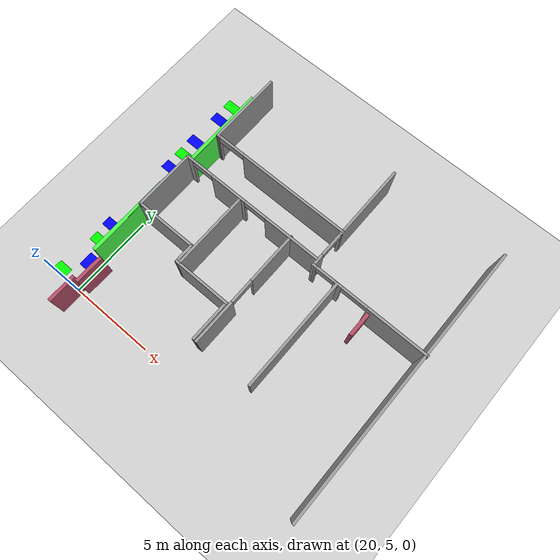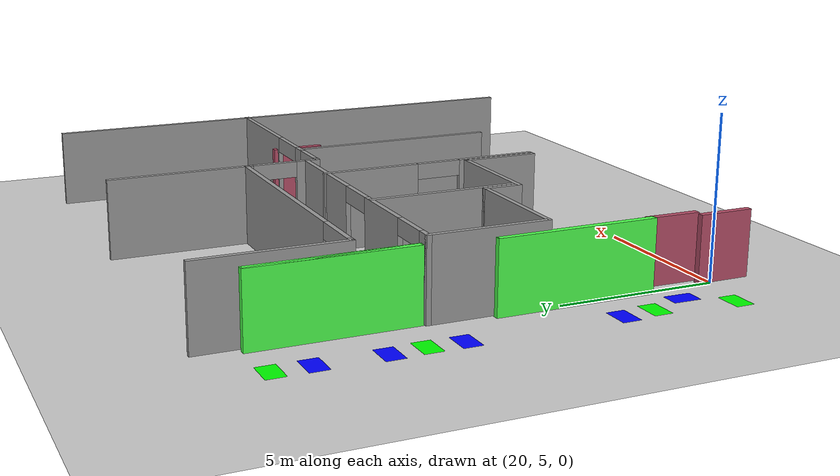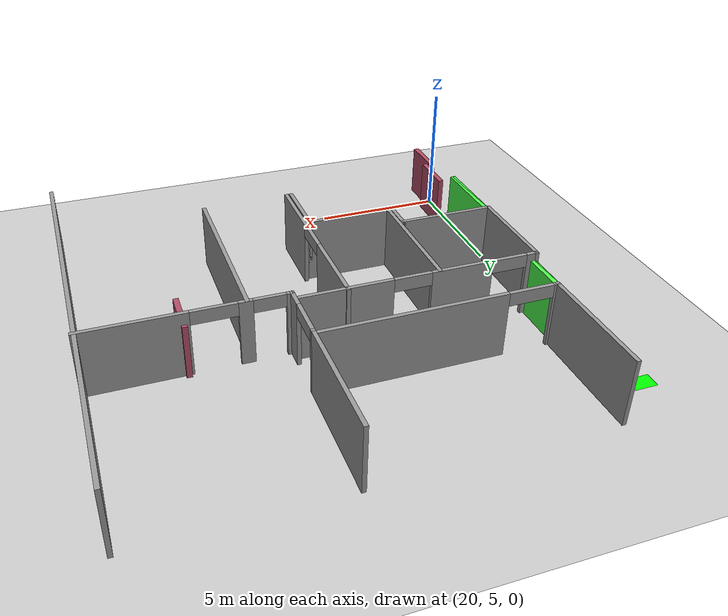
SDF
<sdf version="1.6">
 <world name="default">
  <model name="ground_plane">
   <pose>0 0 0.001 0 -0 0</pose>
   <static>1</static>
   <link name="link">
    <collision name="collision">
     <geometry><plane><normal>0 0 1</normal><size>100 100</size></plane></geometry>
     <surface><friction><ode><mu>100</mu><mu2>50</mu2></ode></friction></surface>
    </collision>
    <visual name="visual">
     <cast_shadows>0</cast_shadows>
     <geometry><plane><normal>0 0 1</normal><size>100 100</size></plane></geometry>
     <material>
      <script><uri>file://media/materials/scripts/gazebo.material</uri><name>Gazebo/Grey</name></script>
     </material>
    </visual>
   </link>
  </model>
  <model name="doorOutside_clone_8_clone">
   <link name="link">
    <pose>0.155539 -0.366282 0.216958 0 -0 0</pose>
    <inertial>
     <mass>2.13199</mass>
     <inertia>
      <ixx>0.452656</ixx>
      <ixy>0</ixy>
      <ixz>0</ixz>
      <iyy>0.796738</iyy>
      <iyz>0</iyz>
      <izz>0.699414</izz>
     </inertia>
     <pose>0 0 0.001 0 -0 0</pose>
    </inertial>
    <visual name="visual">
     <geometry><box><size>1.71368 0.198843 2.05986</size></box></geometry>
     <material>
      <script><name>Gazebo/Grey</name><uri>file://media/materials/scripts/gazebo.material</uri></script>
      <ambient>0.7 0.3 0.4 1</ambient>
      <diffuse>0.7 0.7 0.7 1</diffuse>
      <specular>0.01 0.01 0.01 1</specular>
      <emissive>0 0 0 1</emissive>
      <shader type="vertex"><normal_map>__default__</normal_map></shader>
      <lighting>0</lighting>
     </material>
     <pose>0 0 0.001 0 -0 0</pose>
    </visual>
    <collision name="collision">
     <pose>0 0 0.001 0 -0 0</pose>
     <geometry><box><size>1.71368 0.198843 2.05986</size></box></geometry>
     <surface>
      <friction>
       <ode><mu>1</mu><mu2>1</mu2><fdir1>0 0 0</fdir1><slip1>0</slip1><slip2>0</slip2></ode>
       <torsional>
        <coefficient>1</coefficient>
        <patch_radius>0</patch_radius>
        <surface_radius>0</surface_radius>
        <use_patch_radius>1</use_patch_radius>
        <ode><slip>0</slip></ode>
       </torsional>
      </friction>
      <bounce><restitution_coefficient>0</restitution_coefficient><threshold>1e+06</threshold></bounce>
      <contact>
       <collide_without_contact>0</collide_without_contact>
       <collide_without_contact_bitmask>1</collide_without_contact_bitmask>
       <collide_bitmask>1</collide_bitmask>
       <ode>
        <soft_cfm>0</soft_cfm>
        <soft_erp>0.2</soft_erp>
        <kp>1e+13</kp>
        <kd>1</kd>
        <max_vel>0.01</max_vel>
        <min_depth>0</min_depth>
       </ode>
       <bullet>
        <split_impulse>1</split_impulse>
        <split_impulse_penetration_threshold>-0.01</split_impulse_penetration_threshold>
        <soft_cfm>0</soft_cfm>
        <soft_erp>0.2</soft_erp>
        <kp>1e+13</kp>
        <kd>1</kd>
       </bullet>
      </contact>
     </surface>
    </collision>
   </link>
   <static>1</static>
   <pose>20.1185 5.95904 0.812973 1e-06 1e-06 1.55384</pose>
  </model>
  <model name="doorOutside_clone_8_clone_0">
   <link name="link">
    <pose>0.155539 -0.366282 0.216958 0 -0 0</pose>
    <inertial>
     <mass>2.13199</mass>
     <inertia>
      <ixx>0.452656</ixx>
      <ixy>0</ixy>
      <ixz>0</ixz>
      <iyy>0.796738</iyy>
      <iyz>0</iyz>
      <izz>0.699414</izz>
     </inertia>
     <pose>0 0 0.001 0 -0 0</pose>
    </inertial>
    <visual name="visual">
     <geometry><box><size>1.71368 0.198843 2.05986</size></box></geometry>
     <material>
      <script><name>Gazebo/Grey</name><uri>file://media/materials/scripts/gazebo.material</uri></script>
      <ambient>0.7 0.3 0.4 1</ambient>
      <diffuse>0.7 0.7 0.7 1</diffuse>
      <specular>0.01 0.01 0.01 1</specular>
      <emissive>0 0 0 1</emissive>
      <shader type="vertex"><normal_map>__default__</normal_map></shader>
      <lighting>0</lighting>
     </material>
     <pose>0 0 0.001 0 -0 0</pose>
    </visual>
    <collision name="collision">
     <pose>0 0 0.001 0 -0 0</pose>
     <geometry><box><size>1.71368 0.198843 2.05986</size></box></geometry>
     <surface>
      <friction>
       <ode><mu>1</mu><mu2>1</mu2><fdir1>0 0 0</fdir1><slip1>0</slip1><slip2>0</slip2></ode>
       <torsional>
        <coefficient>1</coefficient>
        <patch_radius>0</patch_radius>
        <surface_radius>0</surface_radius>
        <use_patch_radius>1</use_patch_radius>
        <ode><slip>0</slip></ode>
       </torsional>
      </friction>
      <bounce><restitution_coefficient>0</restitution_coefficient><threshold>1e+06</threshold></bounce>
      <contact>
       <collide_without_contact>0</collide_without_contact>
       <collide_without_contact_bitmask>1</collide_without_contact_bitmask>
       <collide_bitmask>1</collide_bitmask>
       <ode>
        <soft_cfm>0</soft_cfm>
        <soft_erp>0.2</soft_erp>
        <kp>1e+13</kp>
        <kd>1</kd>
        <max_vel>0.01</max_vel>
        <min_depth>0</min_depth>
       </ode>
       <bullet>
        <split_impulse>1</split_impulse>
        <split_impulse_penetration_threshold>-0.01</split_impulse_penetration_threshold>
        <soft_cfm>0</soft_cfm>
        <soft_erp>0.2</soft_erp>
        <kp>1e+13</kp>
        <kd>1</kd>
       </bullet>
      </contact>
     </surface>
    </collision>
   </link>
   <static>1</static>
   <pose>32.3755 12.8211 0.812972 -1e-06 0 1.56458</pose>
  </model>
  <model name="doorOutside_clone_8_clone_1">
   <link name="link">
    <pose>0.155539 -0.366282 0.216958 0 -0 0</pose>
    <inertial>
     <mass>2.13199</mass>
     <inertia>
      <ixx>0.452656</ixx>
      <ixy>0</ixy>
      <ixz>0</ixz>
      <iyy>0.796738</iyy>
      <iyz>0</iyz>
      <izz>0.699414</izz>
     </inertia>
     <pose>0 0 0.001 0 -0 0</pose>
    </inertial>
    <visual name="visual">
     <geometry><box><size>1.71368 0.198843 2.05986</size></box></geometry>
     <material>
      <script><name>Gazebo/Grey</name><uri>file://media/materials/scripts/gazebo.material</uri></script>
      <ambient>0.7 0.3 0.4 1</ambient>
      <diffuse>0.7 0.7 0.7 1</diffuse>
      <specular>0.01 0.01 0.01 1</specular>
      <emissive>0 0 0 1</emissive>
      <shader type="vertex"><normal_map>__default__</normal_map></shader>
      <lighting>0</lighting>
     </material>
     <pose>0 0 0.001 0 -0 0</pose>
    </visual>
    <collision name="collision">
     <pose>0 0 0.001 0 -0 0</pose>
     <geometry><box><size>1.71368 0.198843 2.05986</size></box></geometry>
     <surface>
      <friction>
       <ode><mu>1</mu><mu2>1</mu2><fdir1>0 0 0</fdir1><slip1>0</slip1><slip2>0</slip2></ode>
       <torsional>
        <coefficient>1</coefficient>
        <patch_radius>0</patch_radius>
        <surface_radius>0</surface_radius>
        <use_patch_radius>1</use_patch_radius>
        <ode><slip>0</slip></ode>
       </torsional>
      </friction>
      <bounce><restitution_coefficient>0</restitution_coefficient><threshold>1e+06</threshold></bounce>
      <contact>
       <collide_without_contact>0</collide_without_contact>
       <collide_without_contact_bitmask>1</collide_without_contact_bitmask>
       <collide_bitmask>1</collide_bitmask>
       <ode>
        <soft_cfm>0</soft_cfm>
        <soft_erp>0.2</soft_erp>
        <kp>1e+13</kp>
        <kd>1</kd>
        <max_vel>0.01</max_vel>
        <min_depth>0</min_depth>
       </ode>
       <bullet>
        <split_impulse>1</split_impulse>
        <split_impulse_penetration_threshold>-0.01</split_impulse_penetration_threshold>
        <soft_cfm>0</soft_cfm>
        <soft_erp>0.2</soft_erp>
        <kp>1e+13</kp>
        <kd>1</kd>
       </bullet>
      </contact>
     </surface>
    </collision>
   </link>
   <static>1</static>
   <pose>19.8025 4.35425 0.812972 0 -0 1.57076</pose>
  </model>
  <model name="wall_static_1_clone">
   <link name="link">
    <inertial>
     <mass>1</mass>
     <inertia>
      <ixx>0.166667</ixx>
      <ixy>0</ixy>
      <ixz>0</ixz>
      <iyy>0.166667</iyy>
      <iyz>0</iyz>
      <izz>0.166667</izz>
     </inertia>
     <pose>0 0 0.001 0 -0 0</pose>
    </inertial>
    <visual name="ModelPreview_1::link::visual_1">
     <geometry><box><size>4.92373 0.195361 2.3796</size></box></geometry>
     <material>
      <script><name>Gazebo/Grey</name><uri>file://media/materials/scripts/gazebo.material</uri></script>
      <ambient>0.3 1 0.3 1</ambient>
      <diffuse>0.7 0.7 0.7 1</diffuse>
      <specular>0.01 0.01 0.01 1</specular>
      <emissive>0 0 0 1</emissive>
      <shader type="vertex"><normal_map>__default__</normal_map></shader>
     </material>
     <pose>0 0 0.001 0 -0 0</pose>
    </visual>
    <visual name="visual">
     <geometry><box><size>5 0.2 2.3796</size></box></geometry>
     <material>
      <script><name>Gazebo/Grey</name><uri>file://media/materials/scripts/gazebo.material</uri></script>
      <ambient>0.3 1 0.3 1</ambient>
      <diffuse>0.7 0.7 0.7 1</diffuse>
      <specular>0.01 0.01 0.01 1</specular>
      <emissive>0 0 0 1</emissive>
      <shader type="vertex"><normal_map>__default__</normal_map></shader>
     </material>
     <pose>0 0 0.001 0 -0 0</pose>
    </visual>
    <collision name="collision">
     <pose>0 0 0.001 0 -0 0</pose>
     <geometry><box><size>4.92373 0.195361 2.3796</size></box></geometry>
     <surface>
      <friction>
       <ode><mu>1</mu><mu2>1</mu2><fdir1>0 0 0</fdir1><slip1>0</slip1><slip2>0</slip2></ode>
       <torsional>
        <coefficient>1</coefficient>
        <patch_radius>0</patch_radius>
        <surface_radius>0</surface_radius>
        <use_patch_radius>1</use_patch_radius>
        <ode><slip>0</slip></ode>
       </torsional>
      </friction>
      <bounce><restitution_coefficient>0</restitution_coefficient><threshold>1e+06</threshold></bounce>
      <contact>
       <collide_without_contact>0</collide_without_contact>
       <collide_without_contact_bitmask>1</collide_without_contact_bitmask>
       <collide_bitmask>1</collide_bitmask>
       <ode>
        <soft_cfm>0</soft_cfm>
        <soft_erp>0.2</soft_erp>
        <kp>1e+13</kp>
        <kd>1</kd>
        <max_vel>0.01</max_vel>
        <min_depth>0</min_depth>
       </ode>
       <bullet>
        <split_impulse>1</split_impulse>
        <split_impulse_penetration_threshold>-0.01</split_impulse_penetration_threshold>
        <soft_cfm>0</soft_cfm>
        <soft_erp>0.2</soft_erp>
        <kp>1e+13</kp>
        <kd>1</kd>
       </bullet>
      </contact>
     </surface>
    </collision>
   </link>
   <static>1</static>
   <pose>19.9958 9.52677 1.02486 0 -0 1.57305</pose>
  </model>
  <model name="wall_static_1_clone_0">
   <link name="link">
    <inertial>
     <mass>1</mass>
     <inertia>
      <ixx>0.166667</ixx>
      <ixy>0</ixy>
      <ixz>0</ixz>
      <iyy>0.166667</iyy>
      <iyz>0</iyz>
      <izz>0.166667</izz>
     </inertia>
     <pose>0 0 0.001 0 -0 0</pose>
    </inertial>
    <visual name="ModelPreview_1::link::visual_1">
     <geometry><box><size>4.92373 0.195361 2.3796</size></box></geometry>
     <material>
      <script><name>Gazebo/Grey</name><uri>file://media/materials/scripts/gazebo.material</uri></script>
      <ambient>0.3 1 0.3 1</ambient>
      <diffuse>0.7 0.7 0.7 1</diffuse>
      <specular>0.01 0.01 0.01 1</specular>
      <emissive>0 0 0 1</emissive>
      <shader type="vertex"><normal_map>__default__</normal_map></shader>
     </material>
     <pose>0 0 0.001 0 -0 0</pose>
    </visual>
    <visual name="visual">
     <geometry><box><size>5 0.2 2.3796</size></box></geometry>
     <material>
      <script><name>Gazebo/Grey</name><uri>file://media/materials/scripts/gazebo.material</uri></script>
      <ambient>0.3 1 0.3 1</ambient>
      <diffuse>0.7 0.7 0.7 1</diffuse>
      <specular>0.01 0.01 0.01 1</specular>
      <emissive>0 0 0 1</emissive>
      <shader type="vertex"><normal_map>__default__</normal_map></shader>
     </material>
     <pose>0 0 0.001 0 -0 0</pose>
    </visual>
    <collision name="collision">
     <pose>0 0 0.001 0 -0 0</pose>
     <geometry><box><size>4.92373 0.195361 2.3796</size></box></geometry>
     <surface>
      <friction>
       <ode><mu>1</mu><mu2>1</mu2><fdir1>0 0 0</fdir1><slip1>0</slip1><slip2>0</slip2></ode>
       <torsional>
        <coefficient>1</coefficient>
        <patch_radius>0</patch_radius>
        <surface_radius>0</surface_radius>
        <use_patch_radius>1</use_patch_radius>
        <ode><slip>0</slip></ode>
       </torsional>
      </friction>
      <bounce><restitution_coefficient>0</restitution_coefficient><threshold>1e+06</threshold></bounce>
      <contact>
       <collide_without_contact>0</collide_without_contact>
       <collide_without_contact_bitmask>1</collide_without_contact_bitmask>
       <collide_bitmask>1</collide_bitmask>
       <ode>
        <soft_cfm>0</soft_cfm>
        <soft_erp>0.2</soft_erp>
        <kp>1e+13</kp>
        <kd>1</kd>
        <max_vel>0.01</max_vel>
        <min_depth>0</min_depth>
       </ode>
       <bullet>
        <split_impulse>1</split_impulse>
        <split_impulse_penetration_threshold>-0.01</split_impulse_penetration_threshold>
        <soft_cfm>0</soft_cfm>
        <soft_erp>0.2</soft_erp>
        <kp>1e+13</kp>
        <kd>1</kd>
       </bullet>
      </contact>
     </surface>
    </collision>
   </link>
   <static>1</static>
   <pose>20.2741 16.5722 1.02486 0 -0 1.57305</pose>
  </model>
  <model name="corridor_3">
   <link name="link">
    <pose>0 0 0.001 0 -0 0</pose>
    <inertial>
     <mass>0.0352517</mass>
     <inertia>
      <ixx>0.00099707</ixx>
      <ixy>0</ixy>
      <ixz>0</ixz>
      <iyy>0.00220147</iyy>
      <iyz>0</iyz>
      <izz>0.0031692</izz>
     </inertia>
     <pose>0 0 0.001 0 -0 0</pose>
    </inertial>
    <visual name="visual">
     <geometry><box><size>0.862743 0.578289 1e-06</size></box></geometry>
     <material>
      <script><name>Gazebo/Grey</name><uri>file://media/materials/scripts/gazebo.material</uri></script>
      <ambient>0 1 0 1</ambient>
      <diffuse>0 1 0 1</diffuse>
      <specular>0 1 0 1</specular>
      <emissive>0 1 0 1</emissive>
      <shader type="vertex"><normal_map>__default__</normal_map></shader>
     </material>
     <pose>0 0 0.001 0 -0 0</pose>
    </visual>
    <collision name="collision">
     <pose>0 0 0.001 0 -0 0</pose>
     <geometry><box><size>0.862743 0.578289 0.000477</size></box></geometry>
     <surface>
      <friction>
       <ode><mu>1</mu><mu2>1</mu2><fdir1>0 0 0</fdir1><slip1>0</slip1><slip2>0</slip2></ode>
       <torsional>
        <coefficient>1</coefficient>
        <patch_radius>0</patch_radius>
        <surface_radius>0</surface_radius>
        <use_patch_radius>1</use_patch_radius>
        <ode><slip>0</slip></ode>
       </torsional>
      </friction>
      <bounce><restitution_coefficient>0</restitution_coefficient><threshold>1e+06</threshold></bounce>
      <contact>
       <collide_without_contact>0</collide_without_contact>
       <collide_without_contact_bitmask>1</collide_without_contact_bitmask>
       <collide_bitmask>1</collide_bitmask>
       <ode>
        <soft_cfm>0</soft_cfm>
        <soft_erp>0.2</soft_erp>
        <kp>1e+13</kp>
        <kd>1</kd>
        <max_vel>0.01</max_vel>
        <min_depth>0</min_depth>
       </ode>
       <bullet>
        <split_impulse>1</split_impulse>
        <split_impulse_penetration_threshold>-0.01</split_impulse_penetration_threshold>
        <soft_cfm>0</soft_cfm>
        <soft_erp>0.2</soft_erp>
        <kp>1e+13</kp>
        <kd>1</kd>
       </bullet>
      </contact>
     </surface>
    </collision>
   </link>
   <static>1</static>
   <pose>18.6903 14.6665 0 0 -0 0</pose>
  </model>
  <model name="corridor_4">
   <link name="link">
    <pose>0 0 0.001 0 -0 0</pose>
    <inertial>
     <mass>0.0352517</mass>
     <inertia>
      <ixx>0.00099707</ixx>
      <ixy>0</ixy>
      <ixz>0</ixz>
      <iyy>0.00220147</iyy>
      <iyz>0</iyz>
      <izz>0.0031692</izz>
     </inertia>
     <pose>0 0 0.001 0 -0 0</pose>
    </inertial>
    <visual name="visual">
     <geometry><box><size>0.862743 0.578289 1e-06</size></box></geometry>
     <material>
      <script><name>Gazebo/Grey</name><uri>file://media/materials/scripts/gazebo.material</uri></script>
      <ambient>0 1 0 1</ambient>
      <diffuse>0 1 0 1</diffuse>
      <specular>0 1 0 1</specular>
      <emissive>0 1 0 1</emissive>
      <shader type="vertex"><normal_map>__default__</normal_map></shader>
     </material>
     <pose>0 0 0.001 0 -0 0</pose>
    </visual>
    <collision name="collision">
     <pose>0 0 0.001 0 -0 0</pose>
     <geometry><box><size>0.862743 0.578289 0.000477</size></box></geometry>
     <surface>
      <friction>
       <ode><mu>1</mu><mu2>1</mu2><fdir1>0 0 0</fdir1><slip1>0</slip1><slip2>0</slip2></ode>
       <torsional>
        <coefficient>1</coefficient>
        <patch_radius>0</patch_radius>
        <surface_radius>0</surface_radius>
        <use_patch_radius>1</use_patch_radius>
        <ode><slip>0</slip></ode>
       </torsional>
      </friction>
      <bounce><restitution_coefficient>0</restitution_coefficient><threshold>1e+06</threshold></bounce>
      <contact>
       <collide_without_contact>0</collide_without_contact>
       <collide_without_contact_bitmask>1</collide_without_contact_bitmask>
       <collide_bitmask>1</collide_bitmask>
       <ode>
        <soft_cfm>0</soft_cfm>
        <soft_erp>0.2</soft_erp>
        <kp>1e+13</kp>
        <kd>1</kd>
        <max_vel>0.01</max_vel>
        <min_depth>0</min_depth>
       </ode>
       <bullet>
        <split_impulse>1</split_impulse>
        <split_impulse_penetration_threshold>-0.01</split_impulse_penetration_threshold>
        <soft_cfm>0</soft_cfm>
        <soft_erp>0.2</soft_erp>
        <kp>1e+13</kp>
        <kd>1</kd>
       </bullet>
      </contact>
     </surface>
    </collision>
   </link>
   <static>1</static>
   <pose>18.7246 18.8554 0 0 -0 0</pose>
  </model>
  <model name="corridor_5">
   <link name="link">
    <pose>0 0 0.001 0 -0 0</pose>
    <inertial>
     <mass>0.0352517</mass>
     <inertia>
      <ixx>0.00099707</ixx>
      <ixy>0</ixy>
      <ixz>0</ixz>
      <iyy>0.00220147</iyy>
      <iyz>0</iyz>
      <izz>0.0031692</izz>
     </inertia>
     <pose>0 0 0.001 0 -0 0</pose>
    </inertial>
    <visual name="visual">
     <geometry><box><size>0.862743 0.578289 1e-06</size></box></geometry>
     <material>
      <script><name>Gazebo/Grey</name><uri>file://media/materials/scripts/gazebo.material</uri></script>
      <ambient>0 1 0 1</ambient>
      <diffuse>0 1 0 1</diffuse>
      <specular>0 1 0 1</specular>
      <emissive>0 1 0 1</emissive>
      <shader type="vertex"><normal_map>__default__</normal_map></shader>
     </material>
     <pose>0 0 0.001 0 -0 0</pose>
    </visual>
    <collision name="collision">
     <pose>0 0 0.001 0 -0 0</pose>
     <geometry><box><size>0.862743 0.578289 0.000477</size></box></geometry>
     <surface>
      <friction>
       <ode><mu>1</mu><mu2>1</mu2><fdir1>0 0 0</fdir1><slip1>0</slip1><slip2>0</slip2></ode>
       <torsional>
        <coefficient>1</coefficient>
        <patch_radius>0</patch_radius>
        <surface_radius>0</surface_radius>
        <use_patch_radius>1</use_patch_radius>
        <ode><slip>0</slip></ode>
       </torsional>
      </friction>
      <bounce><restitution_coefficient>0</restitution_coefficient><threshold>1e+06</threshold></bounce>
      <contact>
       <collide_without_contact>0</collide_without_contact>
       <collide_without_contact_bitmask>1</collide_without_contact_bitmask>
       <collide_bitmask>1</collide_bitmask>
       <ode>
        <soft_cfm>0</soft_cfm>
        <soft_erp>0.2</soft_erp>
        <kp>1e+13</kp>
        <kd>1</kd>
        <max_vel>0.01</max_vel>
        <min_depth>0</min_depth>
       </ode>
       <bullet>
        <split_impulse>1</split_impulse>
        <split_impulse_penetration_threshold>-0.01</split_impulse_penetration_threshold>
        <soft_cfm>0</soft_cfm>
        <soft_erp>0.2</soft_erp>
        <kp>1e+13</kp>
        <kd>1</kd>
       </bullet>
      </contact>
     </surface>
    </collision>
   </link>
   <static>1</static>
   <pose>18.7359 7.76438 0 0 -0 0</pose>
  </model>
  <model name="intersection_13">
   <link name="link">
    <pose>0 0 0.001 0 -0 0</pose>
    <inertial>
     <mass>0.0352517</mass>
     <inertia>
      <ixx>0.000997067</ixx>
      <ixy>0</ixy>
      <ixz>0</ixz>
      <iyy>0.00220147</iyy>
      <iyz>0</iyz>
      <izz>0.0031692</izz>
     </inertia>
     <pose>0 0 0.001 0 -0 0</pose>
    </inertial>
    <visual name="visual">
     <geometry><box><size>0.862743 0.578289 1e-06</size></box></geometry>
     <material>
      <script><name>Gazebo/Grey</name><uri>file://media/materials/scripts/gazebo.material</uri></script>
      <ambient>0 0 1 1</ambient>
      <diffuse>0 0 1 1</diffuse>
      <specular>0 0 1 1</specular>
      <emissive>0 0 1 1</emissive>
      <shader type="vertex"><normal_map>__default__</normal_map></shader>
     </material>
     <pose>0 0 0.001 0 -0 0</pose>
    </visual>
    <collision name="collision">
     <pose>0 0 0.001 0 -0 0</pose>
     <geometry><box><size>0.862743 0.578289 0.000477</size></box></geometry>
     <surface>
      <friction>
       <ode><mu>1</mu><mu2>1</mu2><fdir1>0 0 0</fdir1><slip1>0</slip1><slip2>0</slip2></ode>
       <torsional>
        <coefficient>1</coefficient>
        <patch_radius>0</patch_radius>
        <surface_radius>0</surface_radius>
        <use_patch_radius>1</use_patch_radius>
        <ode><slip>0</slip></ode>
       </torsional>
      </friction>
      <bounce><restitution_coefficient>0</restitution_coefficient><threshold>1e+06</threshold></bounce>
      <contact>
       <collide_without_contact>0</collide_without_contact>
       <collide_without_contact_bitmask>1</collide_without_contact_bitmask>
       <collide_bitmask>1</collide_bitmask>
       <ode>
        <soft_cfm>0</soft_cfm>
        <soft_erp>0.2</soft_erp>
        <kp>1e+13</kp>
        <kd>1</kd>
        <max_vel>0.01</max_vel>
        <min_depth>0</min_depth>
       </ode>
       <bullet>
        <split_impulse>1</split_impulse>
        <split_impulse_penetration_threshold>-0.01</split_impulse_penetration_threshold>
        <soft_cfm>0</soft_cfm>
        <soft_erp>0.2</soft_erp>
        <kp>1e+13</kp>
        <kd>1</kd>
       </bullet>
      </contact>
     </surface>
    </collision>
   </link>
   <static>1</static>
   <pose>19.2328 6.51968 0 0 -0 1.55336</pose>
  </model>
  <model name="intersection_15">
   <link name="link">
    <pose>0 0 0.001 0 -0 0</pose>
    <inertial>
     <mass>0.0352517</mass>
     <inertia>
      <ixx>0.000997067</ixx>
      <ixy>0</ixy>
      <ixz>0</ixz>
      <iyy>0.00220147</iyy>
      <iyz>0</iyz>
      <izz>0.0031692</izz>
     </inertia>
     <pose>0 0 0.001 0 -0 0</pose>
    </inertial>
    <visual name="visual">
     <geometry><box><size>0.862743 0.578289 1e-06</size></box></geometry>
     <material>
      <script><name>Gazebo/Grey</name><uri>file://media/materials/scripts/gazebo.material</uri></script>
      <ambient>0 0 1 1</ambient>
      <diffuse>0 0 1 1</diffuse>
      <specular>0 0 1 1</specular>
      <emissive>0 0 1 1</emissive>
      <shader type="vertex"><normal_map>__default__</normal_map></shader>
     </material>
     <pose>0 0 0.001 0 -0 0</pose>
    </visual>
    <collision name="collision">
     <pose>0 0 0.001 0 -0 0</pose>
     <geometry><box><size>0.862743 0.578289 0.000477</size></box></geometry>
     <surface>
      <friction>
       <ode><mu>1</mu><mu2>1</mu2><fdir1>0 0 0</fdir1><slip1>0</slip1><slip2>0</slip2></ode>
       <torsional>
        <coefficient>1</coefficient>
        <patch_radius>0</patch_radius>
        <surface_radius>0</surface_radius>
        <use_patch_radius>1</use_patch_radius>
        <ode><slip>0</slip></ode>
       </torsional>
      </friction>
      <bounce><restitution_coefficient>0</restitution_coefficient><threshold>1e+06</threshold></bounce>
      <contact>
       <collide_without_contact>0</collide_without_contact>
       <collide_without_contact_bitmask>1</collide_without_contact_bitmask>
       <collide_bitmask>1</collide_bitmask>
       <ode>
        <soft_cfm>0</soft_cfm>
        <soft_erp>0.2</soft_erp>
        <kp>1e+13</kp>
        <kd>1</kd>
        <max_vel>0.01</max_vel>
        <min_depth>0</min_depth>
       </ode>
       <bullet>
        <split_impulse>1</split_impulse>
        <split_impulse_penetration_threshold>-0.01</split_impulse_penetration_threshold>
        <soft_cfm>0</soft_cfm>
        <soft_erp>0.2</soft_erp>
        <kp>1e+13</kp>
        <kd>1</kd>
       </bullet>
      </contact>
     </surface>
    </collision>
   </link>
   <static>1</static>
   <pose>18.6223 8.84617 0 0 -0 0</pose>
  </model>
  <model name="intersection_16">
   <link name="link">
    <pose>0 0 0.001 0 -0 0</pose>
    <inertial>
     <mass>0.0352517</mass>
     <inertia>
      <ixx>0.000997067</ixx>
      <ixy>0</ixy>
      <ixz>0</ixz>
      <iyy>0.00220147</iyy>
      <iyz>0</iyz>
      <izz>0.0031692</izz>
     </inertia>
     <pose>0 0 0.001 0 -0 0</pose>
    </inertial>
    <visual name="visual">
     <geometry><box><size>0.862743 0.578289 1e-06</size></box></geometry>
     <material>
      <script><name>Gazebo/Grey</name><uri>file://media/materials/scripts/gazebo.material</uri></script>
      <ambient>0 0 1 1</ambient>
      <diffuse>0 0 1 1</diffuse>
      <specular>0 0 1 1</specular>
      <emissive>0 0 1 1</emissive>
      <shader type="vertex"><normal_map>__default__</normal_map></shader>
     </material>
     <pose>0 0 0.001 0 -0 0</pose>
    </visual>
    <collision name="collision">
     <pose>0 0 0.001 0 -0 0</pose>
     <geometry><box><size>0.862743 0.578289 0.000477</size></box></geometry>
     <surface>
      <friction>
       <ode><mu>1</mu><mu2>1</mu2><fdir1>0 0 0</fdir1><slip1>0</slip1><slip2>0</slip2></ode>
       <torsional>
        <coefficient>1</coefficient>
        <patch_radius>0</patch_radius>
        <surface_radius>0</surface_radius>
        <use_patch_radius>1</use_patch_radius>
        <ode><slip>0</slip></ode>
       </torsional>
      </friction>
      <bounce><restitution_coefficient>0</restitution_coefficient><threshold>1e+06</threshold></bounce>
      <contact>
       <collide_without_contact>0</collide_without_contact>
       <collide_without_contact_bitmask>1</collide_without_contact_bitmask>
       <collide_bitmask>1</collide_bitmask>
       <ode>
        <soft_cfm>0</soft_cfm>
        <soft_erp>0.2</soft_erp>
        <kp>1e+13</kp>
        <kd>1</kd>
        <max_vel>0.01</max_vel>
        <min_depth>0</min_depth>
       </ode>
       <bullet>
        <split_impulse>1</split_impulse>
        <split_impulse_penetration_threshold>-0.01</split_impulse_penetration_threshold>
        <soft_cfm>0</soft_cfm>
        <soft_erp>0.2</soft_erp>
        <kp>1e+13</kp>
        <kd>1</kd>
       </bullet>
      </contact>
     </surface>
    </collision>
   </link>
   <static>1</static>
   <pose>18.6603 13.5814 0 0 -0 0</pose>
  </model>
  <model name="intersection_17">
   <link name="link">
    <pose>0 0 0.001 0 -0 0</pose>
    <inertial>
     <mass>0.0352517</mass>
     <inertia>
      <ixx>0.000997067</ixx>
      <ixy>0</ixy>
      <ixz>0</ixz>
      <iyy>0.00220147</iyy>
      <iyz>0</iyz>
      <izz>0.0031692</izz>
     </inertia>
     <pose>0 0 0.001 0 -0 0</pose>
    </inertial>
    <visual name="visual">
     <geometry><box><size>0.862743 0.578289 1e-06</size></box></geometry>
     <material>
      <script><name>Gazebo/Grey</name><uri>file://media/materials/scripts/gazebo.material</uri></script>
      <ambient>0 0 1 1</ambient>
      <diffuse>0 0 1 1</diffuse>
      <specular>0 0 1 1</specular>
      <emissive>0 0 1 1</emissive>
      <shader type="vertex"><normal_map>__default__</normal_map></shader>
     </material>
     <pose>0 0 0.001 0 -0 0</pose>
    </visual>
    <collision name="collision">
     <pose>0 0 0.001 0 -0 0</pose>
     <geometry><box><size>0.862743 0.578289 0.000477</size></box></geometry>
     <surface>
      <friction>
       <ode><mu>1</mu><mu2>1</mu2><fdir1>0 0 0</fdir1><slip1>0</slip1><slip2>0</slip2></ode>
       <torsional>
        <coefficient>1</coefficient>
        <patch_radius>0</patch_radius>
        <surface_radius>0</surface_radius>
        <use_patch_radius>1</use_patch_radius>
        <ode><slip>0</slip></ode>
       </torsional>
      </friction>
      <bounce><restitution_coefficient>0</restitution_coefficient><threshold>1e+06</threshold></bounce>
      <contact>
       <collide_without_contact>0</collide_without_contact>
       <collide_without_contact_bitmask>1</collide_without_contact_bitmask>
       <collide_bitmask>1</collide_bitmask>
       <ode>
        <soft_cfm>0</soft_cfm>
        <soft_erp>0.2</soft_erp>
        <kp>1e+13</kp>
        <kd>1</kd>
        <max_vel>0.01</max_vel>
        <min_depth>0</min_depth>
       </ode>
       <bullet>
        <split_impulse>1</split_impulse>
        <split_impulse_penetration_threshold>-0.01</split_impulse_penetration_threshold>
        <soft_cfm>0</soft_cfm>
        <soft_erp>0.2</soft_erp>
        <kp>1e+13</kp>
        <kd>1</kd>
       </bullet>
      </contact>
     </surface>
    </collision>
   </link>
   <static>1</static>
   <pose>18.6395 15.7387 0 0 -0 0</pose>
  </model>
  <model name="intersection_18">
   <link name="link">
    <pose>0 0 0.001 0 -0 0</pose>
    <inertial>
     <mass>0.0352517</mass>
     <inertia>
      <ixx>0.000997067</ixx>
      <ixy>0</ixy>
      <ixz>0</ixz>
      <iyy>0.00220147</iyy>
      <iyz>0</iyz>
      <izz>0.0031692</izz>
     </inertia>
     <pose>0 0 0.001 0 -0 0</pose>
    </inertial>
    <visual name="visual">
     <geometry><box><size>0.862743 0.578289 1e-06</size></box></geometry>
     <material>
      <script><name>Gazebo/Grey</name><uri>file://media/materials/scripts/gazebo.material</uri></script>
      <ambient>0 0 1 1</ambient>
      <diffuse>0 0 1 1</diffuse>
      <specular>0 0 1 1</specular>
      <emissive>0 0 1 1</emissive>
      <shader type="vertex"><normal_map>__default__</normal_map></shader>
     </material>
     <pose>0 0 0.001 0 -0 0</pose>
    </visual>
    <collision name="collision">
     <pose>0 0 0.001 0 -0 0</pose>
     <geometry><box><size>0.862743 0.578289 0.000477</size></box></geometry>
     <surface>
      <friction>
       <ode><mu>1</mu><mu2>1</mu2><fdir1>0 0 0</fdir1><slip1>0</slip1><slip2>0</slip2></ode>
       <torsional>
        <coefficient>1</coefficient>
        <patch_radius>0</patch_radius>
        <surface_radius>0</surface_radius>
        <use_patch_radius>1</use_patch_radius>
        <ode><slip>0</slip></ode>
       </torsional>
      </friction>
      <bounce><restitution_coefficient>0</restitution_coefficient><threshold>1e+06</threshold></bounce>
      <contact>
       <collide_without_contact>0</collide_without_contact>
       <collide_without_contact_bitmask>1</collide_without_contact_bitmask>
       <collide_bitmask>1</collide_bitmask>
       <ode>
        <soft_cfm>0</soft_cfm>
        <soft_erp>0.2</soft_erp>
        <kp>1e+13</kp>
        <kd>1</kd>
        <max_vel>0.01</max_vel>
        <min_depth>0</min_depth>
       </ode>
       <bullet>
        <split_impulse>1</split_impulse>
        <split_impulse_penetration_threshold>-0.01</split_impulse_penetration_threshold>
        <soft_cfm>0</soft_cfm>
        <soft_erp>0.2</soft_erp>
        <kp>1e+13</kp>
        <kd>1</kd>
       </bullet>
      </contact>
     </surface>
    </collision>
   </link>
   <static>1</static>
   <pose>18.7109 17.7348 0 0 -0 0</pose>
  </model>
  <model name="corridor_9">
   <link name="link">
    <pose>0 0 0.001 0 -0 0</pose>
    <inertial>
     <mass>0.0352517</mass>
     <inertia>
      <ixx>0.00099707</ixx>
      <ixy>0</ixy>
      <ixz>0</ixz>
      <iyy>0.00220147</iyy>
      <iyz>0</iyz>
      <izz>0.0031692</izz>
     </inertia>
     <pose>0 0 0.001 0 -0 0</pose>
    </inertial>
    <visual name="visual">
     <geometry><box><size>0.862743 0.578289 1e-06</size></box></geometry>
     <material>
      <script><name>Gazebo/Grey</name><uri>file://media/materials/scripts/gazebo.material</uri></script>
      <ambient>0 1 0 1</ambient>
      <diffuse>0 1 0 1</diffuse>
      <specular>0 1 0 1</specular>
      <emissive>0 1 0 1</emissive>
      <shader type="vertex"><normal_map>__default__</normal_map></shader>
     </material>
     <pose>0 0 0.001 0 -0 0</pose>
    </visual>
    <collision name="collision">
     <pose>0 0 0.001 0 -0 0</pose>
     <geometry><box><size>0.862743 0.578289 0.000477</size></box></geometry>
     <surface>
      <friction>
       <ode><mu>1</mu><mu2>1</mu2><fdir1>0 0 0</fdir1><slip1>0</slip1><slip2>0</slip2></ode>
       <torsional>
        <coefficient>1</coefficient>
        <patch_radius>0</patch_radius>
        <surface_radius>0</surface_radius>
        <use_patch_radius>1</use_patch_radius>
        <ode><slip>0</slip></ode>
       </torsional>
      </friction>
      <bounce><restitution_coefficient>0</restitution_coefficient><threshold>1e+06</threshold></bounce>
      <contact>
       <collide_without_contact>0</collide_without_contact>
       <collide_without_contact_bitmask>1</collide_without_contact_bitmask>
       <collide_bitmask>1</collide_bitmask>
       <ode>
        <soft_cfm>0</soft_cfm>
        <soft_erp>0.2</soft_erp>
        <kp>1e+13</kp>
        <kd>1</kd>
        <max_vel>0.01</max_vel>
        <min_depth>0</min_depth>
       </ode>
       <bullet>
        <split_impulse>1</split_impulse>
        <split_impulse_penetration_threshold>-0.01</split_impulse_penetration_threshold>
        <soft_cfm>0</soft_cfm>
        <soft_erp>0.2</soft_erp>
        <kp>1e+13</kp>
        <kd>1</kd>
       </bullet>
      </contact>
     </surface>
    </collision>
   </link>
   <static>1</static>
   <pose>18.4473 5.27933 0 0 -0 0</pose>
  </model>
  <model name="Se1_cut">
   <pose>3.62364 13.9276 0 0 -0 0</pose>
   <link name="Wall_4">
    <collision name="Wall_4_Collision">
     <geometry><box><size>16.75 0.15 2.5</size></box></geometry>
     <pose>0 0 1.25 0 -0 0</pose>
    </collision>
    <visual name="Wall_4_Visual">
     <pose>0 0 1.25 0 -0 0</pose>
     <geometry><box><size>16.75 0.15 2.5</size></box></geometry>
     <material>
      <script><uri>file://media/materials/scripts/gazebo.material</uri><name>Gazebo/Grey</name></script>
      <ambient>1 1 1 1</ambient>
     </material>
    </visual>
    <pose>32.5186 -1.925 0 0 -0 1.5708</pose>
   </link>
   <link name="Wall_65">
    <collision name="Wall_65_Collision">
     <geometry><box><size>4.5 0.15 2.5</size></box></geometry>
     <pose>0 0 1.25 0 -0 0</pose>
    </collision>
    <visual name="Wall_65_Visual">
     <pose>0 0 1.25 0 -0 0</pose>
     <geometry><box><size>4.5 0.15 2.5</size></box></geometry>
     <material>
      <script><uri>file://media/materials/scripts/gazebo.material</uri><name>Gazebo/Grey</name></script>
      <ambient>1 1 1 1</ambient>
     </material>
    </visual>
    <pose>16.8814 4.22619 0 0 0 -1.5708</pose>
   </link>
   <link name="Wall_66">
    <pose>21.1814 2.05119 0 0 -0 0</pose>
    <visual name="Wall_66_Visual_0">
     <pose>-4.25666 0 1.25 0 -0 0</pose>
     <geometry><box><size>0.236679 0.15 2.5</size></box></geometry>
     <material>
      <script><uri>file://media/materials/scripts/gazebo.material</uri><name>Gazebo/Grey</name></script>
      <ambient>1 1 1 1</ambient>
     </material>
    </visual>
    <collision name="Wall_66_Collision_0">
     <geometry><box><size>0.236679 0.15 2.5</size></box></geometry>
     <pose>-4.25666 0 1.25 0 -0 0</pose>
    </collision>
    <visual name="Wall_66_Visual_1">
     <pose>0.954042 0 1.25 0 -0 0</pose>
     <geometry><box><size>6.84192 0.15 2.5</size></box></geometry>
     <material>
      <script><uri>file://media/materials/scripts/gazebo.material</uri><name>Gazebo/Grey</name></script>
      <ambient>1 1 1 1</ambient>
     </material>
    </visual>
    <collision name="Wall_66_Collision_1">
     <geometry><box><size>6.84192 0.15 2.5</size></box></geometry>
     <pose>0.954042 0 1.25 0 -0 0</pose>
    </collision>
    <visual name="Wall_66_Visual_2">
     <pose>-3.30262 0 2.25 0 -0 0</pose>
     <geometry><box><size>1.67141 0.15 0.5</size></box></geometry>
     <material>
      <script><uri>file://media/materials/scripts/gazebo.material</uri><name>Gazebo/Grey</name></script>
      <ambient>1 1 1 1</ambient>
     </material>
    </visual>
    <collision name="Wall_66_Collision_2">
     <geometry><box><size>1.67141 0.15 0.5</size></box></geometry>
     <pose>-3.30262 0 2.25 0 -0 0</pose>
    </collision>
   </link>
   <link name="Wall_67">
    <collision name="Wall_67_Collision">
     <geometry><box><size>4.5 0.15 2.5</size></box></geometry>
     <pose>0 0 1.25 0 -0 0</pose>
    </collision>
    <visual name="Wall_67_Visual">
     <pose>0 0 1.25 0 -0 0</pose>
     <geometry><box><size>4.5 0.15 2.5</size></box></geometry>
     <material>
      <script><uri>file://media/materials/scripts/gazebo.material</uri><name>Gazebo/Grey</name></script>
      <ambient>1 1 1 1</ambient>
     </material>
    </visual>
    <pose>25.4814 4.22619 0 0 -0 1.5708</pose>
   </link>
   <link name="Wall_69">
    <pose>25.4814 0.876187 0 0 0 -1.5708</pose>
    <visual name="Wall_69_Visual_0">
     <pose>-1.11105 0 1.25 0 -0 0</pose>
     <geometry><box><size>0.278249 0.15 2.5</size></box></geometry>
     <material>
      <script><uri>file://media/materials/scripts/gazebo.material</uri><name>Gazebo/Grey</name></script>
      <ambient>1 1 1 1</ambient>
     </material>
    </visual>
    <collision name="Wall_69_Collision_0">
     <geometry><box><size>0.278249 0.15 2.5</size></box></geometry>
     <pose>-1.11105 0 1.25 0 -0 0</pose>
    </collision>
    <visual name="Wall_69_Visual_1">
     <pose>0.855126 0 1.25 0 -0 0</pose>
     <geometry><box><size>0.790095 0.15 2.5</size></box></geometry>
     <material>
      <script><uri>file://media/materials/scripts/gazebo.material</uri><name>Gazebo/Grey</name></script>
      <ambient>1 1 1 1</ambient>
     </material>
    </visual>
    <collision name="Wall_69_Collision_1">
     <geometry><box><size>0.790095 0.15 2.5</size></box></geometry>
     <pose>0.855126 0 1.25 0 -0 0</pose>
    </collision>
    <visual name="Wall_69_Visual_2">
     <pose>-0.255923 0 2.25 0 -0 0</pose>
     <geometry><box><size>1.432 0.15 0.5</size></box></geometry>
     <material>
      <script><uri>file://media/materials/scripts/gazebo.material</uri><name>Gazebo/Grey</name></script>
      <ambient>1 1 1 1</ambient>
     </material>
    </visual>
    <collision name="Wall_69_Collision_2">
     <geometry><box><size>1.432 0.15 0.5</size></box></geometry>
     <pose>-0.255923 0 2.25 0 -0 0</pose>
    </collision>
   </link>
   <link name="Wall_70">
    <pose>29.0314 -0.298813 0 0 -0 0</pose>
    <visual name="Wall_70_Visual_0">
     <pose>-3.49078 0 1.25 0 -0 0</pose>
     <geometry><box><size>0.268443 0.15 2.5</size></box></geometry>
     <material>
      <script><uri>file://media/materials/scripts/gazebo.material</uri><name>Gazebo/Grey</name></script>
      <ambient>1 1 1 1</ambient>
     </material>
    </visual>
    <collision name="Wall_70_Collision_0">
     <geometry><box><size>0.268443 0.15 2.5</size></box></geometry>
     <pose>-3.49078 0 1.25 0 -0 0</pose>
    </collision>
    <visual name="Wall_70_Visual_1">
     <pose>-1.9689 0 1.25 0 -0 0</pose>
     <geometry><box><size>0.496511 0.15 2.5</size></box></geometry>
     <material>
      <script><uri>file://media/materials/scripts/gazebo.material</uri><name>Gazebo/Grey</name></script>
      <ambient>1 1 1 1</ambient>
     </material>
    </visual>
    <collision name="Wall_70_Collision_1">
     <geometry><box><size>0.496511 0.15 2.5</size></box></geometry>
     <pose>-1.9689 0 1.25 0 -0 0</pose>
    </collision>
    <visual name="Wall_70_Visual_2">
     <pose>1.76128 0 1.25 0 -0 0</pose>
     <geometry><box><size>3.72744 0.15 2.5</size></box></geometry>
     <material>
      <script><uri>file://media/materials/scripts/gazebo.material</uri><name>Gazebo/Grey</name></script>
      <ambient>1 1 1 1</ambient>
     </material>
    </visual>
    <collision name="Wall_70_Collision_2">
     <geometry><box><size>3.72744 0.15 2.5</size></box></geometry>
     <pose>1.76128 0 1.25 0 -0 0</pose>
    </collision>
    <visual name="Wall_70_Visual_3">
     <pose>-2.78686 0 2.25 0 -0 0</pose>
     <geometry><box><size>1.1394 0.15 0.5</size></box></geometry>
     <material>
      <script><uri>file://media/materials/scripts/gazebo.material</uri><name>Gazebo/Grey</name></script>
      <ambient>1 1 1 1</ambient>
     </material>
    </visual>
    <collision name="Wall_70_Collision_3">
     <geometry><box><size>1.1394 0.15 0.5</size></box></geometry>
     <pose>-2.78686 0 2.25 0 -0 0</pose>
    </collision>
    <visual name="Wall_70_Visual_4">
     <pose>-0.911541 0 2.25 0 -0 0</pose>
     <geometry><box><size>1.6182 0.15 0.5</size></box></geometry>
     <material>
      <script><uri>file://media/materials/scripts/gazebo.material</uri><name>Gazebo/Grey</name></script>
      <ambient>1 1 1 1</ambient>
     </material>
    </visual>
    <collision name="Wall_70_Collision_4">
     <geometry><box><size>1.6182 0.15 0.5</size></box></geometry>
     <pose>-0.911541 0 2.25 0 -0 0</pose>
    </collision>
   </link>
   <link name="Wall_72">
    <collision name="Wall_72_Collision">
     <geometry><box><size>3.75 0.15 2.5</size></box></geometry>
     <pose>0 0 1.25 0 -0 0</pose>
    </collision>
    <visual name="Wall_72_Visual">
     <pose>0 0 1.25 0 -0 0</pose>
     <geometry><box><size>3.75 0.15 2.5</size></box></geometry>
     <material>
      <script><uri>file://media/materials/scripts/gazebo.material</uri><name>Gazebo/Grey</name></script>
      <ambient>1 1 1 1</ambient>
     </material>
    </visual>
    <pose>16.5155 -1.74337 0 0 0 -1.5708</pose>
   </link>
   <link name="Wall_73">
    <collision name="Wall_73_Collision">
     <geometry><box><size>3.75 0.15 2.5</size></box></geometry>
     <pose>0 0 1.25 0 -0 0</pose>
    </collision>
    <visual name="Wall_73_Visual">
     <pose>0 0 1.25 0 -0 0</pose>
     <geometry><box><size>3.75 0.15 2.5</size></box></geometry>
     <material>
      <script><uri>file://media/materials/scripts/gazebo.material</uri><name>Gazebo/Grey</name></script>
      <ambient>1 1 1 1</ambient>
     </material>
    </visual>
    <pose>18.3155 -3.54337 0 0 -0 0</pose>
   </link>
   <link name="Wall_74">
    <collision name="Wall_74_Collision">
     <geometry><box><size>1.25 0.15 2.5</size></box></geometry>
     <pose>0 0 1.25 0 -0 0</pose>
    </collision>
    <visual name="Wall_74_Visual">
     <pose>0 0 1.25 0 -0 0</pose>
     <geometry><box><size>1.25 0.15 2.5</size></box></geometry>
     <material>
      <script><uri>file://media/materials/scripts/gazebo.material</uri><name>Gazebo/Grey</name></script>
      <ambient>1 1 1 1</ambient>
     </material>
    </visual>
    <pose>20.1155 -4.09337 0 0 0 -1.5708</pose>
   </link>
   <link name="Wall_75">
    <collision name="Wall_75_Collision">
     <geometry><box><size>3.5 0.15 2.5</size></box></geometry>
     <pose>0 0 1.25 0 -0 0</pose>
    </collision>
    <visual name="Wall_75_Visual">
     <pose>0 0 1.25 0 -0 0</pose>
     <geometry><box><size>3.5 0.15 2.5</size></box></geometry>
     <material>
      <script><uri>file://media/materials/scripts/gazebo.material</uri><name>Gazebo/Grey</name></script>
      <ambient>1 1 1 1</ambient>
     </material>
    </visual>
    <pose>21.7905 -4.64337 0 0 -0 0</pose>
   </link>
   <link name="Wall_77">
    <collision name="Wall_77_Collision">
     <geometry><box><size>2.5 0.15 2.5</size></box></geometry>
     <pose>0 0 1.25 0 -0 0</pose>
    </collision>
    <visual name="Wall_77_Visual">
     <pose>0 0 1.25 0 -0 0</pose>
     <geometry><box><size>2.5 0.15 2.5</size></box></geometry>
     <material>
      <script><uri>file://media/materials/scripts/gazebo.material</uri><name>Gazebo/Grey</name></script>
      <ambient>1 1 1 1</ambient>
     </material>
    </visual>
    <pose>23.4655 -5.81837 0 0 0 -1.5708</pose>
   </link>
   <link name="Wall_79">
    <pose>20.9405 0.056629 0 0 -0 0</pose>
    <visual name="Wall_79_Visual_0">
     <pose>-4.25855 0 1.25 0 -0 0</pose>
     <geometry><box><size>0.482903 0.15 2.5</size></box></geometry>
     <material>
      <script><uri>file://media/materials/scripts/gazebo.material</uri><name>Gazebo/Grey</name></script>
      <ambient>1 1 1 1</ambient>
     </material>
    </visual>
    <collision name="Wall_79_Collision_0">
     <geometry><box><size>0.482903 0.15 2.5</size></box></geometry>
     <pose>-4.25855 0 1.25 0 -0 0</pose>
    </collision>
    <visual name="Wall_79_Visual_1">
     <pose>-1.51223 0 1.25 0 -0 0</pose>
     <geometry><box><size>2.30532 0.15 2.5</size></box></geometry>
     <material>
      <script><uri>file://media/materials/scripts/gazebo.material</uri><name>Gazebo/Grey</name></script>
      <ambient>1 1 1 1</ambient>
     </material>
    </visual>
    <collision name="Wall_79_Collision_1">
     <geometry><box><size>2.30532 0.15 2.5</size></box></geometry>
     <pose>-1.51223 0 1.25 0 -0 0</pose>
    </collision>
    <visual name="Wall_79_Visual_2">
     <pose>2.77292 0 1.25 0 -0 0</pose>
     <geometry><box><size>3.45417 0.15 2.5</size></box></geometry>
     <material>
      <script><uri>file://media/materials/scripts/gazebo.material</uri><name>Gazebo/Grey</name></script>
      <ambient>1 1 1 1</ambient>
     </material>
    </visual>
    <collision name="Wall_79_Collision_2">
     <geometry><box><size>3.45417 0.15 2.5</size></box></geometry>
     <pose>2.77292 0 1.25 0 -0 0</pose>
    </collision>
    <visual name="Wall_79_Visual_3">
     <pose>-3.341 0 2.25 0 -0 0</pose>
     <geometry><box><size>1.3522 0.15 0.5</size></box></geometry>
     <material>
      <script><uri>file://media/materials/scripts/gazebo.material</uri><name>Gazebo/Grey</name></script>
      <ambient>1 1 1 1</ambient>
     </material>
    </visual>
    <collision name="Wall_79_Collision_3">
     <geometry><box><size>1.3522 0.15 0.5</size></box></geometry>
     <pose>-3.341 0 2.25 0 -0 0</pose>
    </collision>
    <visual name="Wall_79_Visual_4">
     <pose>0.343132 0 2.25 0 -0 0</pose>
     <geometry><box><size>1.4054 0.15 0.5</size></box></geometry>
     <material>
      <script><uri>file://media/materials/scripts/gazebo.material</uri><name>Gazebo/Grey</name></script>
      <ambient>1 1 1 1</ambient>
     </material>
    </visual>
    <collision name="Wall_79_Collision_4">
     <geometry><box><size>1.4054 0.15 0.5</size></box></geometry>
     <pose>0.343132 0 2.25 0 -0 0</pose>
    </collision>
   </link>
   <link name="Wall_81">
    <collision name="Wall_81_Collision">
     <geometry><box><size>4.75 0.15 2.5</size></box></geometry>
     <pose>0 0 1.25 0 -0 0</pose>
    </collision>
    <visual name="Wall_81_Visual">
     <pose>0 0 1.25 0 -0 0</pose>
     <geometry><box><size>4.75 0.15 2.5</size></box></geometry>
     <material>
      <script><uri>file://media/materials/scripts/gazebo.material</uri><name>Gazebo/Grey</name></script>
      <ambient>1 1 1 1</ambient>
     </material>
    </visual>
    <pose>20.2773 -2.2622 0 0 0 -1.5708</pose>
   </link>
   <link name="Wall_83">
    <pose>23.6544 -3.44281 0 0 0 -1.5708</pose>
    <visual name="Wall_83_Visual_0">
     <pose>-2.05064 0 1.25 0 -0 0</pose>
     <geometry><box><size>3.14871 0.15 2.5</size></box></geometry>
     <material>
      <script><uri>file://media/materials/scripts/gazebo.material</uri><name>Gazebo/Grey</name></script>
      <ambient>1 1 1 1</ambient>
     </material>
    </visual>
    <collision name="Wall_83_Collision_0">
     <geometry><box><size>3.14871 0.15 2.5</size></box></geometry>
     <pose>-2.05064 0 1.25 0 -0 0</pose>
    </collision>
    <visual name="Wall_83_Visual_1">
     <pose>2.30366 0 1.25 0 -0 0</pose>
     <geometry><box><size>2.64268 0.15 2.5</size></box></geometry>
     <material>
      <script><uri>file://media/materials/scripts/gazebo.material</uri><name>Gazebo/Grey</name></script>
      <ambient>1 1 1 1</ambient>
     </material>
    </visual>
    <collision name="Wall_83_Collision_1">
     <geometry><box><size>2.64268 0.15 2.5</size></box></geometry>
     <pose>2.30366 0 1.25 0 -0 0</pose>
    </collision>
    <visual name="Wall_83_Visual_2">
     <pose>0.253014 0 2.25 0 -0 0</pose>
     <geometry><box><size>1.4586 0.15 0.5</size></box></geometry>
     <material>
      <script><uri>file://media/materials/scripts/gazebo.material</uri><name>Gazebo/Grey</name></script>
      <ambient>1 1 1 1</ambient>
     </material>
    </visual>
    <collision name="Wall_83_Collision_2">
     <geometry><box><size>1.4586 0.15 0.5</size></box></geometry>
     <pose>0.253014 0 2.25 0 -0 0</pose>
    </collision>
   </link>
   <link name="Wall_85">
    <collision name="Wall_85_Collision">
     <geometry><box><size>6.75 0.15 2.5</size></box></geometry>
     <pose>0 0 1.25 0 -0 0</pose>
    </collision>
    <visual name="Wall_85_Visual">
     <pose>0 0 1.25 0 -0 0</pose>
     <geometry><box><size>6.75 0.15 2.5</size></box></geometry>
     <material>
      <script><uri>file://media/materials/scripts/gazebo.material</uri><name>Gazebo/Grey</name></script>
      <ambient>1 1 1 1</ambient>
     </material>
    </visual>
    <pose>27.0083 -3.60916 0 0 0 -1.5708</pose>
   </link>
   <static>1</static>
  </model>
 </world>
</sdf>
